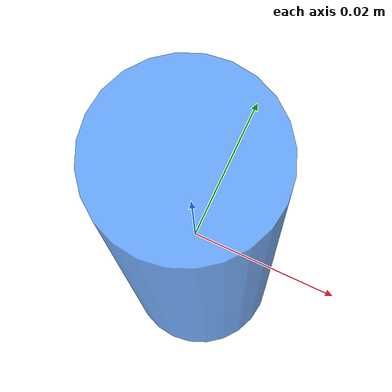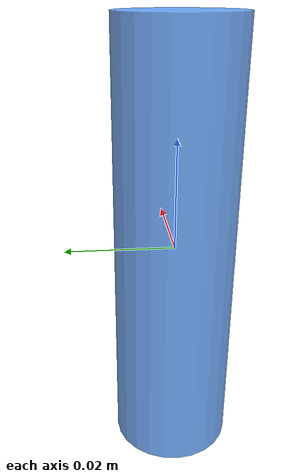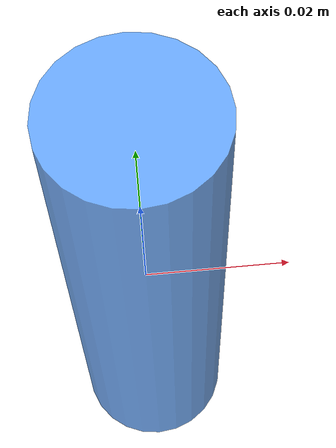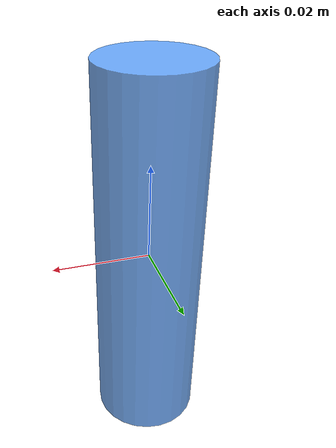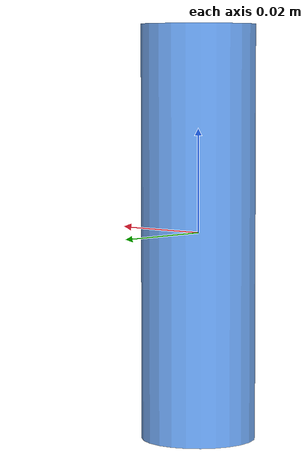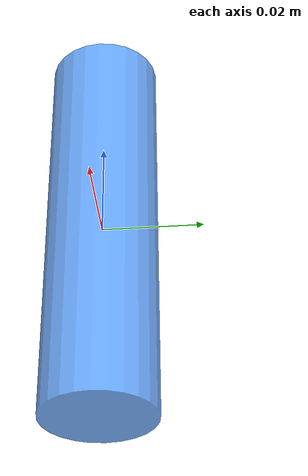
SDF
<?xml version="1.0" ?>
<sdf version="1.5">
  <!-- Miniature bottle: r=0.011 h=0.08 → width=22mm (pickable, hand_close=18) -->
  <model name="bottle">
    <link name="link">
      <pose>0 0 0 0 0 0</pose>
      <inertial>
        <mass>0.020</mass>
        <inertia>
          <!-- cylinder r=0.011 h=0.08: ixx=iyy=(m/12)*(3r²+h²), izz=mr²/2 -->
          <ixx>1.14e-5</ixx>
          <ixy>0</ixy><ixz>0</ixz>
          <iyy>1.14e-5</iyy>
          <iyz>0</iyz>
          <izz>1.21e-6</izz>
        </inertia>
      </inertial>
      <collision name="collision">
        <geometry>
          <cylinder><radius>0.011</radius><length>0.08</length></cylinder>
        </geometry>
        <surface>
          <contact><ode><kp>1000000</kp><kd>100</kd><max_vel>0.1</max_vel><min_depth>0.001</min_depth></ode></contact>
          <friction><ode><mu>1.0</mu><mu2>1.0</mu2></ode><torsional><coefficient>1.0</coefficient><use_patch_radius>0</use_patch_radius><surface_radius>0.011</surface_radius></torsional></friction>
        </surface>
      </collision>
      <visual name="visual">
        <geometry><cylinder><radius>0.011</radius><length>0.08</length></cylinder></geometry>
        <material><ambient>0.3 0.6 1.0 0.8</ambient><diffuse>0.3 0.6 1.0 0.8</diffuse></material>
      </visual>
    </link>
  </model>
</sdf>
